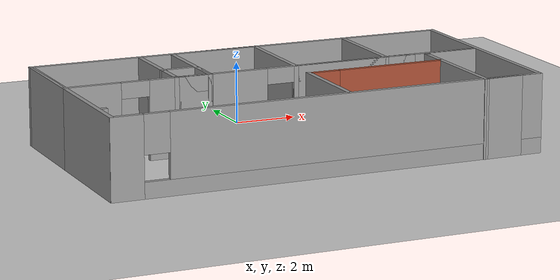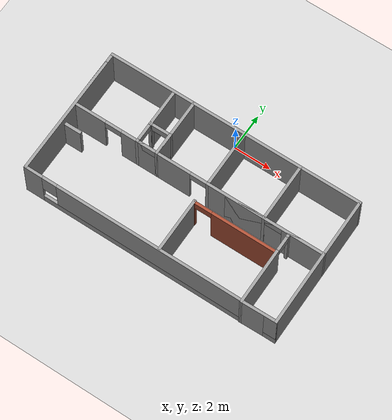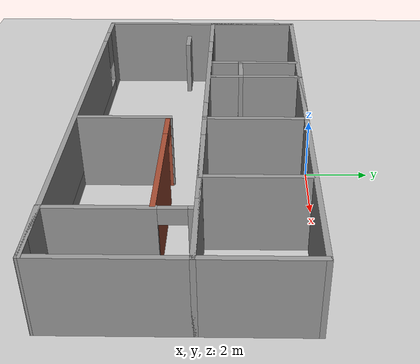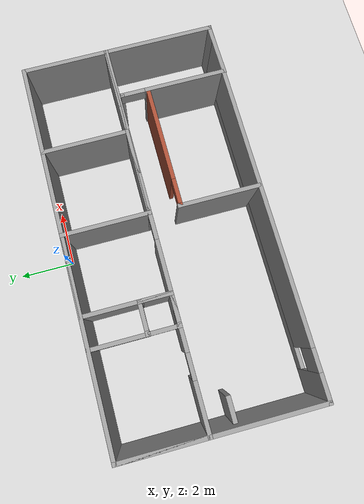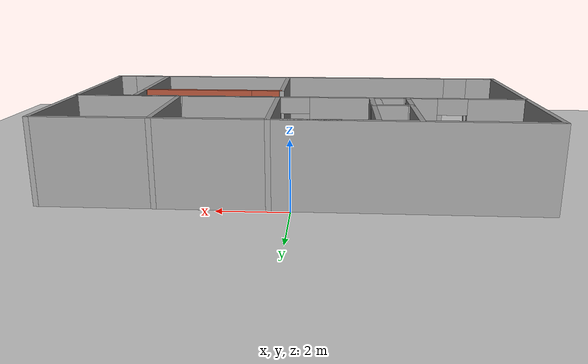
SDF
<sdf version="1.6">
 <world name="default">
  <model name="ground_plane">
   <static>1</static>
   <link name="link">
    <collision name="collision">
     <geometry><plane><normal>0 0 1</normal><size>100 100</size></plane></geometry>
     <surface>
      <contact><collide_bitmask>65535</collide_bitmask></contact>
      <friction><ode><mu>100</mu><mu2>50</mu2></ode></friction>
     </surface>
    </collision>
    <visual name="visual">
     <cast_shadows>0</cast_shadows>
     <geometry><plane><normal>0 0 1</normal><size>100 100</size></plane></geometry>
     <material>
      <script><uri>file://media/materials/scripts/gazebo.material</uri><name>Gazebo/Grey</name></script>
     </material>
    </visual>
   </link>
  </model>
  <model name="model">
   <pose>0.01562 -3.70069 0 0 -0 0</pose>
   <link name="Door_0">
    <collision name="Door_0_Collision">
     <geometry><box><size>0.9 0.17 2</size></box></geometry>
     <pose>0 0 1 0 -0 0</pose>
    </collision>
    <visual name="Door_0_Visual">
     <pose>0 0 1 0 -0 0</pose>
     <geometry><box><size>0.9 0.17 2</size></box></geometry>
     <material>
      <script><uri>file://media/materials/scripts/gazebo.material</uri><name>Gazebo/Grey</name></script>
     </material>
    </visual>
    <pose>-6.39512 -0.487309 0 0 -0 0</pose>
   </link>
   <link name="Wall_0">
    <collision name="Wall_0_Collision">
     <geometry><box><size>7.2155 0.15 2.5</size></box></geometry>
     <pose>0 0 1.25 0 -0 0</pose>
    </collision>
    <visual name="Wall_0_Visual">
     <pose>0 0 1.25 0 -0 0</pose>
     <geometry><box><size>7.2155 0.15 2.5</size></box></geometry>
     <material>
      <script><uri>file://media/materials/scripts/gazebo.material</uri><name>Gazebo/Grey</name></script>
      <ambient>1 1 1 1</ambient>
     </material>
     <meta><layer>0</layer></meta>
    </visual>
    <pose>-6.92562 0.017941 0 0 -0 -1.5708</pose>
   </link>
   <link name="Wall_13">
    <pose>-0.000621 -3.52631 0 0 -0 0</pose>
    <visual name="Wall_13_Visual_0">
     <pose>-6.48325 0 1.25 0 -0 0</pose>
     <geometry><box><size>1.0335 0.15 2.5</size></box></geometry>
     <material>
      <script><uri>file://media/materials/scripts/gazebo.material</uri><name>Gazebo/Grey</name></script>
      <ambient>1 1 1 1</ambient>
     </material>
     <meta><layer>0</layer></meta>
    </visual>
    <collision name="Wall_13_Collision_0">
     <geometry><box><size>1.0335 0.15 2.5</size></box></geometry>
     <pose>-6.48325 0 1.25 0 -0 0</pose>
    </collision>
    <visual name="Wall_13_Visual_1">
     <pose>0.51675 0 0.25 0 -0 0</pose>
     <geometry><box><size>12.9665 0.15 0.5</size></box></geometry>
     <material>
      <script><uri>file://media/materials/scripts/gazebo.material</uri><name>Gazebo/Grey</name></script>
      <ambient>1 1 1 1</ambient>
     </material>
     <meta><layer>0</layer></meta>
    </visual>
    <collision name="Wall_13_Collision_1">
     <geometry><box><size>12.9665 0.15 0.5</size></box></geometry>
     <pose>0.51675 0 0.25 0 -0 0</pose>
    </collision>
    <visual name="Wall_13_Visual_2">
     <pose>0.91675 0 1.5 0 -0 0</pose>
     <geometry><box><size>12.1665 0.15 2</size></box></geometry>
     <material>
      <script><uri>file://media/materials/scripts/gazebo.material</uri><name>Gazebo/Grey</name></script>
      <ambient>1 1 1 1</ambient>
     </material>
     <meta><layer>0</layer></meta>
    </visual>
    <collision name="Wall_13_Collision_2">
     <geometry><box><size>12.1665 0.15 2</size></box></geometry>
     <pose>0.91675 0 1.5 0 -0 0</pose>
    </collision>
    <visual name="Wall_13_Visual_3">
     <pose>-5.5665 0 1.9 0 -0 0</pose>
     <geometry><box><size>0.8 0.15 1.2</size></box></geometry>
     <material>
      <script><uri>file://media/materials/scripts/gazebo.material</uri><name>Gazebo/Grey</name></script>
      <ambient>1 1 1 1</ambient>
     </material>
     <meta><layer>0</layer></meta>
    </visual>
    <collision name="Wall_13_Collision_3">
     <geometry><box><size>0.8 0.15 1.2</size></box></geometry>
     <pose>-5.5665 0 1.9 0 -0 0</pose>
    </collision>
   </link>
   <link name="Wall_14">
    <collision name="Wall_14_Collision">
     <geometry><box><size>7.2155 0.15 2.5</size></box></geometry>
     <pose>0 0 1.25 0 -0 0</pose>
    </collision>
    <visual name="Wall_14_Visual">
     <pose>0 0 1.25 0 -0 0</pose>
     <geometry><box><size>7.2155 0.15 2.5</size></box></geometry>
     <material>
      <script><uri>file://media/materials/scripts/gazebo.material</uri><name>Gazebo/Grey</name></script>
      <ambient>1 1 1 1</ambient>
     </material>
     <meta><layer>0</layer></meta>
    </visual>
    <pose>6.92438 0.017941 0 0 -0 1.5708</pose>
   </link>
   <link name="Wall_15">
    <collision name="Wall_15_Collision">
     <geometry><box><size>14 0.15 2.5</size></box></geometry>
     <pose>0 0 1.25 0 -0 0</pose>
    </collision>
    <visual name="Wall_15_Visual">
     <pose>0 0 1.25 0 -0 0</pose>
     <geometry><box><size>14 0.15 2.5</size></box></geometry>
     <material>
      <script><uri>file://media/materials/scripts/gazebo.material</uri><name>Gazebo/Grey</name></script>
      <ambient>1 1 1 1</ambient>
     </material>
     <meta><layer>0</layer></meta>
    </visual>
    <pose>-0.000621 3.55069 0 0 -0 3.14159</pose>
   </link>
   <link name="Wall_20">
    <collision name="Wall_20_Collision">
     <geometry><box><size>3.25 0.15 2.5</size></box></geometry>
     <pose>0 0 1.25 0 -0 0</pose>
    </collision>
    <visual name="Wall_20_Visual">
     <pose>0 0 1.25 0 -0 0</pose>
     <geometry><box><size>3.25 0.15 2.5</size></box></geometry>
     <material>
      <script><uri>file://media/materials/scripts/gazebo.material</uri><name>Gazebo/Grey</name></script>
      <ambient>1 1 1 1</ambient>
     </material>
     <meta><layer>0</layer></meta>
    </visual>
    <pose>-6.92562 2.00069 0 0 -0 -1.5708</pose>
   </link>
   <link name="Wall_21">
    <pose>-0.000621 0.450691 0 0 -0 0</pose>
    <visual name="Wall_21_Visual_0">
     <pose>-6.08275 0 1.25 0 -0 0</pose>
     <geometry><box><size>1.8345 0.15 2.5</size></box></geometry>
     <material>
      <script><uri>file://media/materials/scripts/gazebo.material</uri><name>Gazebo/Grey</name></script>
      <ambient>1 1 1 1</ambient>
     </material>
     <meta><layer>0</layer></meta>
    </visual>
    <collision name="Wall_21_Collision_0">
     <geometry><box><size>1.8345 0.15 2.5</size></box></geometry>
     <pose>-6.08275 0 1.25 0 -0 0</pose>
    </collision>
    <visual name="Wall_21_Visual_1">
     <pose>-2.32925 0 1.25 0 -0 0</pose>
     <geometry><box><size>3.8725 0.15 2.5</size></box></geometry>
     <material>
      <script><uri>file://media/materials/scripts/gazebo.material</uri><name>Gazebo/Grey</name></script>
      <ambient>1 1 1 1</ambient>
     </material>
     <meta><layer>0</layer></meta>
    </visual>
    <collision name="Wall_21_Collision_1">
     <geometry><box><size>3.8725 0.15 2.5</size></box></geometry>
     <pose>-2.32925 0 1.25 0 -0 0</pose>
    </collision>
    <visual name="Wall_21_Visual_2">
     <pose>3.7535 0 1.25 0 -0 0</pose>
     <geometry><box><size>6.493 0.15 2.5</size></box></geometry>
     <material>
      <script><uri>file://media/materials/scripts/gazebo.material</uri><name>Gazebo/Grey</name></script>
      <ambient>1 1 1 1</ambient>
     </material>
     <meta><layer>0</layer></meta>
    </visual>
    <collision name="Wall_21_Collision_2">
     <geometry><box><size>6.493 0.15 2.5</size></box></geometry>
     <pose>3.7535 0 1.25 0 -0 0</pose>
    </collision>
    <visual name="Wall_21_Visual_3">
     <pose>-4.7155 0 2.25 0 -0 0</pose>
     <geometry><box><size>0.9 0.15 0.5</size></box></geometry>
     <material>
      <script><uri>file://media/materials/scripts/gazebo.material</uri><name>Gazebo/Grey</name></script>
      <ambient>1 1 1 1</ambient>
     </material>
     <meta><layer>0</layer></meta>
    </visual>
    <collision name="Wall_21_Collision_3">
     <geometry><box><size>0.9 0.15 0.5</size></box></geometry>
     <pose>-4.7155 0 2.25 0 -0 0</pose>
    </collision>
    <visual name="Wall_21_Visual_4">
     <pose>0.057 0 2.25 0 -0 0</pose>
     <geometry><box><size>0.9 0.15 0.5</size></box></geometry>
     <material>
      <script><uri>file://media/materials/scripts/gazebo.material</uri><name>Gazebo/Grey</name></script>
      <ambient>1 1 1 1</ambient>
     </material>
     <meta><layer>0</layer></meta>
    </visual>
    <collision name="Wall_21_Collision_4">
     <geometry><box><size>0.9 0.15 0.5</size></box></geometry>
     <pose>0.057 0 2.25 0 -0 0</pose>
    </collision>
   </link>
   <link name="Wall_23">
    <pose>2.80688 -0.663809 0 0 -0 3.14159</pose>
    <visual name="Wall_23_Visual_0">
     <pose>-0.49225 0 1.25 0 -0 0</pose>
     <geometry><box><size>3.5155 0.15 2.5</size></box></geometry>
     <material>
      <script><uri>file://media/materials/scripts/gazebo.material</uri><name>Gazebo/Bricks</name></script>
      <ambient>0.435294 0.796078 0.67451 1</ambient>
     </material>
     <meta><layer>0</layer></meta>
    </visual>
    <collision name="Wall_23_Collision_0">
     <geometry><box><size>3.5155 0.15 2.5</size></box></geometry>
     <pose>-0.49225 0 1.25 0 -0 0</pose>
    </collision>
    <visual name="Wall_23_Visual_1">
     <pose>2.20775 0 1.25 0 -0 0</pose>
     <geometry><box><size>0.0845 0.15 2.5</size></box></geometry>
     <material>
      <script><uri>file://media/materials/scripts/gazebo.material</uri><name>Gazebo/Bricks</name></script>
      <ambient>0.435294 0.796078 0.67451 1</ambient>
     </material>
     <meta><layer>0</layer></meta>
    </visual>
    <collision name="Wall_23_Collision_1">
     <geometry><box><size>0.0845 0.15 2.5</size></box></geometry>
     <pose>2.20775 0 1.25 0 -0 0</pose>
    </collision>
    <visual name="Wall_23_Visual_2">
     <pose>1.7155 0 2.25 0 -0 0</pose>
     <geometry><box><size>0.9 0.15 0.5</size></box></geometry>
     <material>
      <script><uri>file://media/materials/scripts/gazebo.material</uri><name>Gazebo/Bricks</name></script>
      <ambient>0.435294 0.796078 0.67451 1</ambient>
     </material>
     <meta><layer>0</layer></meta>
    </visual>
    <collision name="Wall_23_Collision_2">
     <geometry><box><size>0.9 0.15 0.5</size></box></geometry>
     <pose>1.7155 0 2.25 0 -0 0</pose>
    </collision>
   </link>
   <link name="Wall_25">
    <collision name="Wall_25_Collision">
     <geometry><box><size>2.00004 0.15 2.5</size></box></geometry>
     <pose>0 0 1.25 0 -0 0</pose>
    </collision>
    <visual name="Wall_25_Visual">
     <pose>0 0 1.25 0 -0 0</pose>
     <geometry><box><size>2.00004 0.15 2.5</size></box></geometry>
     <material>
      <script><uri>file://media/materials/scripts/gazebo.material</uri><name>Gazebo/Grey</name></script>
      <ambient>1 1 1 1</ambient>
     </material>
     <meta><layer>0</layer></meta>
    </visual>
    <pose>5.99938 -3.53206 0 0 -0 -3.12295</pose>
   </link>
   <link name="Wall_26">
    <pose>5.07438 -1.62431 0 0 -0 1.5708</pose>
    <visual name="Wall_26_Visual_0">
     <pose>-0.461 0 1.25 0 -0 0</pose>
     <geometry><box><size>3.078 0.15 2.5</size></box></geometry>
     <material>
      <script><uri>file://media/materials/scripts/gazebo.material</uri><name>Gazebo/Grey</name></script>
      <ambient>1 1 1 1</ambient>
     </material>
     <meta><layer>0</layer></meta>
    </visual>
    <collision name="Wall_26_Collision_0">
     <geometry><box><size>3.078 0.15 2.5</size></box></geometry>
     <pose>-0.461 0 1.25 0 -0 0</pose>
    </collision>
    <visual name="Wall_26_Visual_1">
     <pose>1.989 0 1.25 0 -0 0</pose>
     <geometry><box><size>0.022 0.15 2.5</size></box></geometry>
     <material>
      <script><uri>file://media/materials/scripts/gazebo.material</uri><name>Gazebo/Grey</name></script>
      <ambient>1 1 1 1</ambient>
     </material>
     <meta><layer>0</layer></meta>
    </visual>
    <collision name="Wall_26_Collision_1">
     <geometry><box><size>0.022 0.15 2.5</size></box></geometry>
     <pose>1.989 0 1.25 0 -0 0</pose>
    </collision>
    <visual name="Wall_26_Visual_2">
     <pose>1.528 0 2.25 0 -0 0</pose>
     <geometry><box><size>0.9 0.15 0.5</size></box></geometry>
     <material>
      <script><uri>file://media/materials/scripts/gazebo.material</uri><name>Gazebo/Grey</name></script>
      <ambient>1 1 1 1</ambient>
     </material>
     <meta><layer>0</layer></meta>
    </visual>
    <collision name="Wall_26_Collision_2">
     <geometry><box><size>0.9 0.15 0.5</size></box></geometry>
     <pose>1.528 0 2.25 0 -0 0</pose>
    </collision>
   </link>
   <link name="Wall_27">
    <collision name="Wall_27_Collision">
     <geometry><box><size>0.15 0.15 2.5</size></box></geometry>
     <pose>0 0 1.25 0 -0 0</pose>
    </collision>
    <visual name="Wall_27_Visual">
     <pose>0 0 1.25 0 -0 0</pose>
     <geometry><box><size>0.15 0.15 2.5</size></box></geometry>
     <material>
      <script><uri>file://media/materials/scripts/gazebo.material</uri><name>Gazebo/Grey</name></script>
      <ambient>1 1 1 1</ambient>
     </material>
     <meta><layer>0</layer></meta>
    </visual>
    <pose>5.07438 0.300691 0 0 -0 0</pose>
   </link>
   <link name="Wall_29">
    <pose>3.74938 0.450691 0 0 -0 3.14159</pose>
    <visual name="Wall_29_Visual_0">
     <pose>-2.09075 0 1.25 0 -0 0</pose>
     <geometry><box><size>2.3185 0.15 2.5</size></box></geometry>
     <material>
      <script><uri>file://media/materials/scripts/gazebo.material</uri><name>Gazebo/Grey</name></script>
      <ambient>1 1 1 1</ambient>
     </material>
     <meta><layer>0</layer></meta>
    </visual>
    <collision name="Wall_29_Collision_0">
     <geometry><box><size>2.3185 0.15 2.5</size></box></geometry>
     <pose>-2.09075 0 1.25 0 -0 0</pose>
    </collision>
    <visual name="Wall_29_Visual_1">
     <pose>1.60925 0 1.25 0 -0 0</pose>
     <geometry><box><size>3.2815 0.15 2.5</size></box></geometry>
     <material>
      <script><uri>file://media/materials/scripts/gazebo.material</uri><name>Gazebo/Grey</name></script>
      <ambient>1 1 1 1</ambient>
     </material>
     <meta><layer>0</layer></meta>
    </visual>
    <collision name="Wall_29_Collision_1">
     <geometry><box><size>3.2815 0.15 2.5</size></box></geometry>
     <pose>1.60925 0 1.25 0 -0 0</pose>
    </collision>
    <visual name="Wall_29_Visual_2">
     <pose>-0.4815 0 2.25 0 -0 0</pose>
     <geometry><box><size>0.9 0.15 0.5</size></box></geometry>
     <material>
      <script><uri>file://media/materials/scripts/gazebo.material</uri><name>Gazebo/Grey</name></script>
      <ambient>1 1 1 1</ambient>
     </material>
     <meta><layer>0</layer></meta>
    </visual>
    <collision name="Wall_29_Collision_2">
     <geometry><box><size>0.9 0.15 0.5</size></box></geometry>
     <pose>-0.4815 0 2.25 0 -0 0</pose>
    </collision>
   </link>
   <link name="Wall_30">
    <collision name="Wall_30_Collision">
     <geometry><box><size>3.25 0.15 2.5</size></box></geometry>
     <pose>0 0 1.25 0 -0 0</pose>
    </collision>
    <visual name="Wall_30_Visual">
     <pose>0 0 1.25 0 -0 0</pose>
     <geometry><box><size>3.25 0.15 2.5</size></box></geometry>
     <material>
      <script><uri>file://media/materials/scripts/gazebo.material</uri><name>Gazebo/Grey</name></script>
      <ambient>1 1 1 1</ambient>
     </material>
     <meta><layer>0</layer></meta>
    </visual>
    <pose>0.574379 2.00069 0 0 -0 1.5708</pose>
   </link>
   <link name="Wall_31">
    <collision name="Wall_31_Collision">
     <geometry><box><size>3 0.15 2.5</size></box></geometry>
     <pose>0 0 1.25 0 -0 0</pose>
    </collision>
    <visual name="Wall_31_Visual">
     <pose>0 0 1.25 0 -0 0</pose>
     <geometry><box><size>3 0.15 2.5</size></box></geometry>
     <material>
      <script><uri>file://media/materials/scripts/gazebo.material</uri><name>Gazebo/Grey</name></script>
      <ambient>1 1 1 1</ambient>
     </material>
     <meta><layer>0</layer></meta>
    </visual>
    <pose>-0.850621 3.55069 0 0 -0 3.14159</pose>
   </link>
   <link name="Wall_32">
    <collision name="Wall_32_Collision">
     <geometry><box><size>3.25 0.15 2.5</size></box></geometry>
     <pose>0 0 1.25 0 -0 0</pose>
    </collision>
    <visual name="Wall_32_Visual">
     <pose>0 0 1.25 0 -0 0</pose>
     <geometry><box><size>3.25 0.15 2.5</size></box></geometry>
     <material>
      <script><uri>file://media/materials/scripts/gazebo.material</uri><name>Gazebo/Grey</name></script>
      <ambient>1 1 1 1</ambient>
     </material>
     <meta><layer>0</layer></meta>
    </visual>
    <pose>-2.27562 2.00069 0 0 -0 -1.5708</pose>
   </link>
   <link name="Wall_33">
    <pose>-2.82562 0.450691 0 0 -0 3.14159</pose>
    <visual name="Wall_33_Visual_0">
     <pose>-0.54675 0 1.25 0 -0 0</pose>
     <geometry><box><size>0.1565 0.15 2.5</size></box></geometry>
     <material>
      <script><uri>file://media/materials/scripts/gazebo.material</uri><name>Gazebo/Grey</name></script>
      <ambient>1 1 1 1</ambient>
     </material>
     <meta><layer>0</layer></meta>
    </visual>
    <collision name="Wall_33_Collision_0">
     <geometry><box><size>0.1565 0.15 2.5</size></box></geometry>
     <pose>-0.54675 0 1.25 0 -0 0</pose>
    </collision>
    <visual name="Wall_33_Visual_1">
     <pose>0.52825 0 1.25 0 -0 0</pose>
     <geometry><box><size>0.1935 0.15 2.5</size></box></geometry>
     <material>
      <script><uri>file://media/materials/scripts/gazebo.material</uri><name>Gazebo/Grey</name></script>
      <ambient>1 1 1 1</ambient>
     </material>
     <meta><layer>0</layer></meta>
    </visual>
    <collision name="Wall_33_Collision_1">
     <geometry><box><size>0.1935 0.15 2.5</size></box></geometry>
     <pose>0.52825 0 1.25 0 -0 0</pose>
    </collision>
    <visual name="Wall_33_Visual_2">
     <pose>-0.0185 0 2.25 0 -0 0</pose>
     <geometry><box><size>0.9 0.15 0.5</size></box></geometry>
     <material>
      <script><uri>file://media/materials/scripts/gazebo.material</uri><name>Gazebo/Grey</name></script>
      <ambient>1 1 1 1</ambient>
     </material>
     <meta><layer>0</layer></meta>
    </visual>
    <collision name="Wall_33_Collision_2">
     <geometry><box><size>0.9 0.15 0.5</size></box></geometry>
     <pose>-0.0185 0 2.25 0 -0 0</pose>
    </collision>
   </link>
   <link name="Wall_34">
    <pose>-3.37562 2.00069 0 0 -0 1.5708</pose>
    <visual name="Wall_34_Visual_0">
     <pose>-1.534 0 1.25 0 -0 0</pose>
     <geometry><box><size>0.182 0.15 2.5</size></box></geometry>
     <material>
      <script><uri>file://media/materials/scripts/gazebo.material</uri><name>Gazebo/Grey</name></script>
      <ambient>1 1 1 1</ambient>
     </material>
     <meta><layer>0</layer></meta>
    </visual>
    <collision name="Wall_34_Collision_0">
     <geometry><box><size>0.182 0.15 2.5</size></box></geometry>
     <pose>-1.534 0 1.25 0 -0 0</pose>
    </collision>
    <visual name="Wall_34_Visual_1">
     <pose>0.541 0 1.25 0 -0 0</pose>
     <geometry><box><size>2.168 0.15 2.5</size></box></geometry>
     <material>
      <script><uri>file://media/materials/scripts/gazebo.material</uri><name>Gazebo/Grey</name></script>
      <ambient>1 1 1 1</ambient>
     </material>
     <meta><layer>0</layer></meta>
    </visual>
    <collision name="Wall_34_Collision_1">
     <geometry><box><size>2.168 0.15 2.5</size></box></geometry>
     <pose>0.541 0 1.25 0 -0 0</pose>
    </collision>
    <visual name="Wall_34_Visual_2">
     <pose>-0.993 0 2.25 0 -0 0</pose>
     <geometry><box><size>0.9 0.15 0.5</size></box></geometry>
     <material>
      <script><uri>file://media/materials/scripts/gazebo.material</uri><name>Gazebo/Grey</name></script>
      <ambient>1 1 1 1</ambient>
     </material>
     <meta><layer>0</layer></meta>
    </visual>
    <collision name="Wall_34_Collision_2">
     <geometry><box><size>0.9 0.15 0.5</size></box></geometry>
     <pose>-0.993 0 2.25 0 -0 0</pose>
    </collision>
   </link>
   <link name="Wall_36">
    <collision name="Wall_36_Collision">
     <geometry><box><size>3 0.15 2.5</size></box></geometry>
     <pose>0 0 1.25 0 -0 0</pose>
    </collision>
    <visual name="Wall_36_Visual">
     <pose>0 0 1.25 0 -0 0</pose>
     <geometry><box><size>3 0.15 2.5</size></box></geometry>
     <material>
      <script><uri>file://media/materials/scripts/gazebo.material</uri><name>Gazebo/Grey</name></script>
      <ambient>1 1 1 1</ambient>
     </material>
     <meta><layer>0</layer></meta>
    </visual>
    <pose>0.550879 -2.04731 0 0 -0 -1.5708</pose>
   </link>
   <link name="Wall_38">
    <collision name="Wall_38_Collision">
     <geometry><box><size>1.25 0.15 2.5</size></box></geometry>
     <pose>0 0 1.25 0 -0 0</pose>
    </collision>
    <visual name="Wall_38_Visual">
     <pose>0 0 1.25 0 -0 0</pose>
     <geometry><box><size>1.25 0.15 2.5</size></box></geometry>
     <material>
      <script><uri>file://media/materials/scripts/gazebo.material</uri><name>Gazebo/Grey</name></script>
      <ambient>1 1 1 1</ambient>
     </material>
     <meta><layer>0</layer></meta>
    </visual>
    <pose>-2.27562 1.00069 0 0 -0 1.5708</pose>
   </link>
   <link name="Wall_39">
    <pose>-2.82562 1.55069 0 0 -0 3.14159</pose>
    <visual name="Wall_39_Visual_0">
     <pose>-0.54675 0 1.25 0 -0 0</pose>
     <geometry><box><size>0.1565 0.15 2.5</size></box></geometry>
     <material>
      <script><uri>file://media/materials/scripts/gazebo.material</uri><name>Gazebo/Grey</name></script>
      <ambient>1 1 1 1</ambient>
     </material>
     <meta><layer>0</layer></meta>
    </visual>
    <collision name="Wall_39_Collision_0">
     <geometry><box><size>0.1565 0.15 2.5</size></box></geometry>
     <pose>-0.54675 0 1.25 0 -0 0</pose>
    </collision>
    <visual name="Wall_39_Visual_1">
     <pose>0.52825 0 1.25 0 -0 0</pose>
     <geometry><box><size>0.1935 0.15 2.5</size></box></geometry>
     <material>
      <script><uri>file://media/materials/scripts/gazebo.material</uri><name>Gazebo/Grey</name></script>
      <ambient>1 1 1 1</ambient>
     </material>
     <meta><layer>0</layer></meta>
    </visual>
    <collision name="Wall_39_Collision_1">
     <geometry><box><size>0.1935 0.15 2.5</size></box></geometry>
     <pose>0.52825 0 1.25 0 -0 0</pose>
    </collision>
    <visual name="Wall_39_Visual_2">
     <pose>-0.0185 0 2.25 0 -0 0</pose>
     <geometry><box><size>0.9 0.15 0.5</size></box></geometry>
     <material>
      <script><uri>file://media/materials/scripts/gazebo.material</uri><name>Gazebo/Grey</name></script>
      <ambient>1 1 1 1</ambient>
     </material>
     <meta><layer>0</layer></meta>
    </visual>
    <collision name="Wall_39_Collision_2">
     <geometry><box><size>0.9 0.15 0.5</size></box></geometry>
     <pose>-0.0185 0 2.25 0 -0 0</pose>
    </collision>
   </link>
   <link name="Wall_41">
    <pose>2.12438 0.450691 0 0 -0 0</pose>
    <visual name="Wall_41_Visual_0">
     <pose>-1.5425 0 1.25 0 -0 0</pose>
     <geometry><box><size>0.165 0.15 2.5</size></box></geometry>
     <material>
      <script><uri>file://media/materials/scripts/gazebo.material</uri><name>Gazebo/Grey</name></script>
      <ambient>1 1 1 1</ambient>
     </material>
     <meta><layer>0</layer></meta>
    </visual>
    <collision name="Wall_41_Collision_0">
     <geometry><box><size>0.165 0.15 2.5</size></box></geometry>
     <pose>-1.5425 0 1.25 0 -0 0</pose>
    </collision>
    <visual name="Wall_41_Visual_1">
     <pose>0.5325 0 1.25 0 -0 0</pose>
     <geometry><box><size>2.185 0.15 2.5</size></box></geometry>
     <material>
      <script><uri>file://media/materials/scripts/gazebo.material</uri><name>Gazebo/Grey</name></script>
      <ambient>1 1 1 1</ambient>
     </material>
     <meta><layer>0</layer></meta>
    </visual>
    <collision name="Wall_41_Collision_1">
     <geometry><box><size>2.185 0.15 2.5</size></box></geometry>
     <pose>0.5325 0 1.25 0 -0 0</pose>
    </collision>
    <visual name="Wall_41_Visual_2">
     <pose>-1.01 0 2.25 0 -0 0</pose>
     <geometry><box><size>0.9 0.15 0.5</size></box></geometry>
     <material>
      <script><uri>file://media/materials/scripts/gazebo.material</uri><name>Gazebo/Grey</name></script>
      <ambient>1 1 1 1</ambient>
     </material>
     <meta><layer>0</layer></meta>
    </visual>
    <collision name="Wall_41_Collision_2">
     <geometry><box><size>0.9 0.15 0.5</size></box></geometry>
     <pose>-1.01 0 2.25 0 -0 0</pose>
    </collision>
   </link>
   <link name="Wall_42">
    <collision name="Wall_42_Collision">
     <geometry><box><size>3.25 0.15 2.5</size></box></geometry>
     <pose>0 0 1.25 0 -0 0</pose>
    </collision>
    <visual name="Wall_42_Visual">
     <pose>0 0 1.25 0 -0 0</pose>
     <geometry><box><size>3.25 0.15 2.5</size></box></geometry>
     <material>
      <script><uri>file://media/materials/scripts/gazebo.material</uri><name>Gazebo/Grey</name></script>
      <ambient>1 1 1 1</ambient>
     </material>
     <meta><layer>0</layer></meta>
    </visual>
    <pose>3.67438 2.00069 0 0 -0 1.5708</pose>
   </link>
   <static>1</static>
  </model>
 </world>
</sdf>
